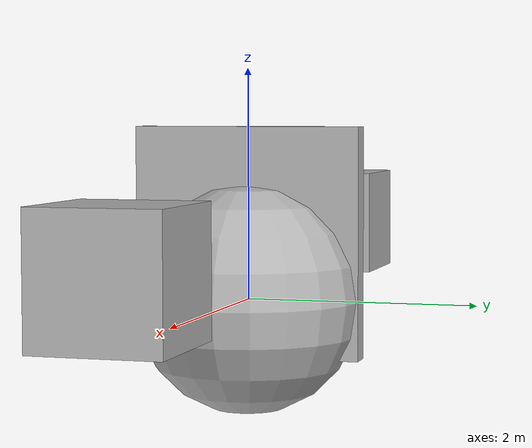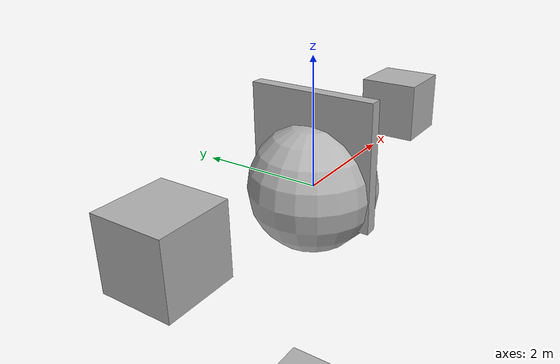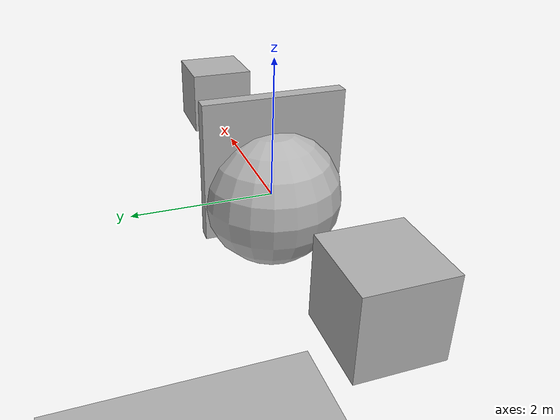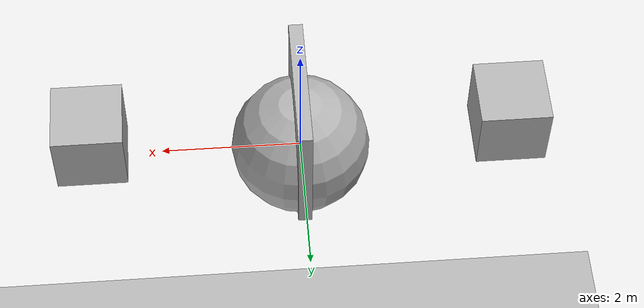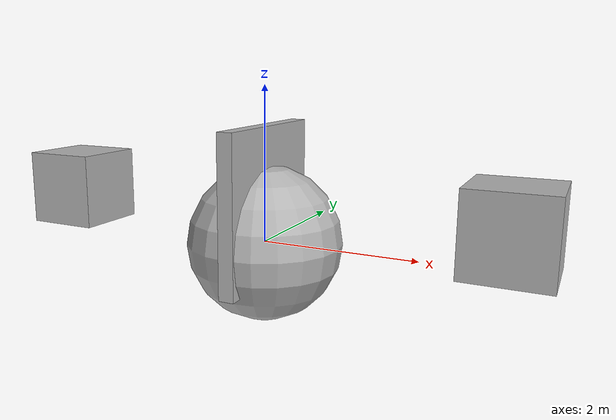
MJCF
<mujoco>
  <option gravity="0 0 -9.81" />
  <worldbody>
    <light diffuse="0.5 0.5 0.5" pos="0 0 5" dir="0 0 -1" />
    <body name="object_4" pos="0 0 -10">
      <geom type="plane" size="50 50 0.1" rgba="0.7 0.7 0.7 1" friction="1 1 1" />
    </body>
    <body name="object_3" pos="0 0 0.5">
      <geom type="box" size="0.1 1 1" rgba="0.7 0.7 0.7 1" />
    </body>
    <body name="object_1" pos="-3 0 0.5">
      <geom type="box" size="0.5 0.5 0.5" mass="1" rgba="0.7 0.7 0.7 1" />
      <joint type="free" name="object_1_joint" />
    </body>
    <body name="object_2" pos="3 0 0.5">
      <geom type="box" size="0.5 0.5 0.5" mass="1" rgba="0.7 0.7 0.7 1" />
      <joint type="free" name="object_2_joint" />
    </body>
  <body name="ground_plane" pos="0.0 0.0 0.0"><geom type="sphere" size="1.0" rgba="0.7 0.7 0.7 1" /></body></worldbody>
</mujoco>
